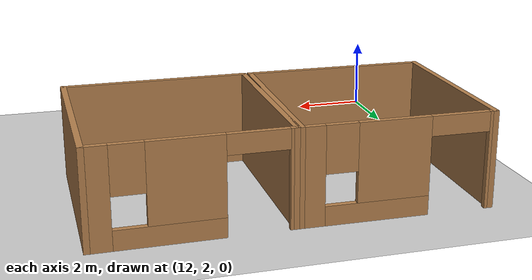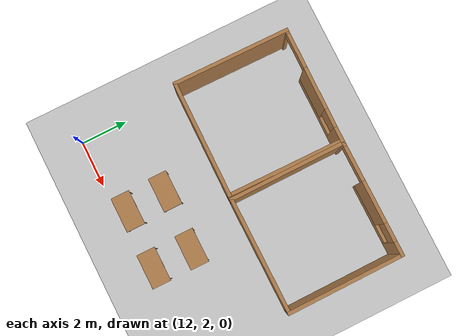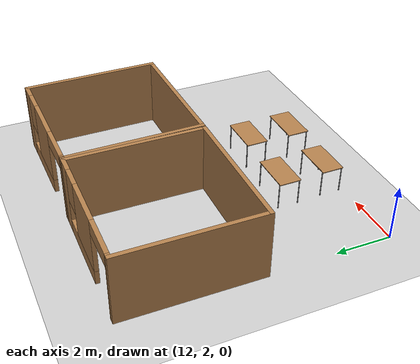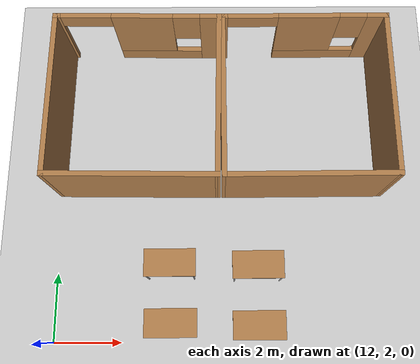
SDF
<sdf version="1.6">
 <world name="default">
  <model name="ground_plane">
   <static>1</static>
   <link name="link">
    <collision name="collision">
     <geometry><plane><normal>0 0 1</normal><size>100 100</size></plane></geometry>
     <surface>
      <contact><collide_bitmask>65535</collide_bitmask></contact>
      <friction><ode><mu>100</mu><mu2>50</mu2></ode></friction>
     </surface>
    </collision>
    <visual name="visual">
     <cast_shadows>0</cast_shadows>
     <geometry><plane><normal>0 0 1</normal><size>100 100</size></plane></geometry>
     <material>
      <script><uri>file://media/materials/scripts/gazebo.material</uri><name>Gazebo/Grey</name></script>
     </material>
    </visual>
   </link>
  </model>
  <model name="studio_2">
   <pose>14.4518 8.89939 0 0 -0 3.13147</pose>
   <link name="Wall_10">
    <collision name="Wall_10_Collision">
     <geometry><box><size>5 0.15 2.5</size></box></geometry>
     <pose>0 0 1.25 0 -0 0</pose>
    </collision>
    <visual name="Wall_10_Visual">
     <pose>0 0 1.25 0 -0 0</pose>
     <geometry><box><size>5 0.15 2.5</size></box></geometry>
     <material>
      <script><uri>file://media/materials/scripts/gazebo.material</uri><name>Gazebo/Wood</name></script>
      <ambient>1 1 1 1</ambient>
     </material>
     <meta><layer>0</layer></meta>
    </visual>
    <pose>0 2.42482 0 0 0 -7.3e-05</pose>
   </link>
   <link name="Wall_13">
    <collision name="Wall_13_Collision">
     <geometry><box><size>5 0.15 2.5</size></box></geometry>
     <pose>0 0 1.25 0 -0 0</pose>
    </collision>
    <visual name="Wall_13_Visual">
     <pose>0 0 1.25 0 -0 0</pose>
     <geometry><box><size>5 0.15 2.5</size></box></geometry>
     <material>
      <script><uri>file://media/materials/scripts/gazebo.material</uri><name>Gazebo/Wood</name></script>
      <ambient>1 1 1 1</ambient>
     </material>
     <meta><layer>0</layer></meta>
    </visual>
    <pose>-2.42502 -3e-06 0 0 0 -1.5708</pose>
   </link>
   <link name="Wall_15">
    <pose>-2e-05 -2.425 0 0 -0 0</pose>
    <visual name="Wall_15_Visual_0">
     <pose>-2.17395 0 1.25 0 -0 0</pose>
     <geometry><box><size>0.652095 0.15 2.5</size></box></geometry>
     <material>
      <script><uri>file://media/materials/scripts/gazebo.material</uri><name>Gazebo/Wood</name></script>
      <ambient>1 1 1 1</ambient>
     </material>
     <meta><layer>0</layer></meta>
    </visual>
    <collision name="Wall_15_Collision_0">
     <geometry><box><size>0.652095 0.15 2.5</size></box></geometry>
     <pose>-2.17395 0 1.25 0 -0 0</pose>
    </collision>
    <visual name="Wall_15_Visual_1">
     <pose>2.38574 0 1.25 0 -0 0</pose>
     <geometry><box><size>0.228515 0.15 2.5</size></box></geometry>
     <material>
      <script><uri>file://media/materials/scripts/gazebo.material</uri><name>Gazebo/Wood</name></script>
      <ambient>1 1 1 1</ambient>
     </material>
     <meta><layer>0</layer></meta>
    </visual>
    <collision name="Wall_15_Collision_1">
     <geometry><box><size>0.228515 0.15 2.5</size></box></geometry>
     <pose>2.38574 0 1.25 0 -0 0</pose>
    </collision>
    <visual name="Wall_15_Visual_2">
     <pose>-0.53821 0 0.25 0 -0 0</pose>
     <geometry><box><size>2.61939 0.15 0.5</size></box></geometry>
     <material>
      <script><uri>file://media/materials/scripts/gazebo.material</uri><name>Gazebo/Wood</name></script>
      <ambient>1 1 1 1</ambient>
     </material>
     <meta><layer>0</layer></meta>
    </visual>
    <collision name="Wall_15_Collision_2">
     <geometry><box><size>2.61939 0.15 0.5</size></box></geometry>
     <pose>-0.53821 0 0.25 0 -0 0</pose>
    </collision>
    <visual name="Wall_15_Visual_3">
     <pose>-0.13821 0 1.5 0 -0 0</pose>
     <geometry><box><size>1.81939 0.15 2</size></box></geometry>
     <material>
      <script><uri>file://media/materials/scripts/gazebo.material</uri><name>Gazebo/Wood</name></script>
      <ambient>1 1 1 1</ambient>
     </material>
     <meta><layer>0</layer></meta>
    </visual>
    <collision name="Wall_15_Collision_3">
     <geometry><box><size>1.81939 0.15 2</size></box></geometry>
     <pose>-0.13821 0 1.5 0 -0 0</pose>
    </collision>
    <visual name="Wall_15_Visual_4">
     <pose>-1.4479 0 1.9 0 -0 0</pose>
     <geometry><box><size>0.8 0.15 1.2</size></box></geometry>
     <material>
      <script><uri>file://media/materials/scripts/gazebo.material</uri><name>Gazebo/Wood</name></script>
      <ambient>1 1 1 1</ambient>
     </material>
     <meta><layer>0</layer></meta>
    </visual>
    <collision name="Wall_15_Collision_4">
     <geometry><box><size>0.8 0.15 1.2</size></box></geometry>
     <pose>-1.4479 0 1.9 0 -0 0</pose>
    </collision>
    <visual name="Wall_15_Visual_5">
     <pose>1.52148 0 2.25 0 -0 0</pose>
     <geometry><box><size>1.5 0.15 0.5</size></box></geometry>
     <material>
      <script><uri>file://media/materials/scripts/gazebo.material</uri><name>Gazebo/Wood</name></script>
      <ambient>1 1 1 1</ambient>
     </material>
     <meta><layer>0</layer></meta>
    </visual>
    <collision name="Wall_15_Collision_5">
     <geometry><box><size>1.5 0.15 0.5</size></box></geometry>
     <pose>1.52148 0 2.25 0 -0 0</pose>
    </collision>
   </link>
   <link name="Wall_16">
    <collision name="Wall_16_Collision">
     <geometry><box><size>4.99965 0.15 2.5</size></box></geometry>
     <pose>0 0 1.25 0 -0 0</pose>
    </collision>
    <visual name="Wall_16_Visual">
     <pose>0 0 1.25 0 -0 0</pose>
     <geometry><box><size>4.99965 0.15 2.5</size></box></geometry>
     <material>
      <script><uri>file://media/materials/scripts/gazebo.material</uri><name>Gazebo/Wood</name></script>
      <ambient>1 1 1 1</ambient>
     </material>
     <meta><layer>0</layer></meta>
    </visual>
    <pose>2.425 -0.00018 0 0 -0 1.57079</pose>
   </link>
   <static>1</static>
  </model>
  <model name="studio_3">
   <pose>19.4488 8.8882 0 0 0 -3.13599</pose>
   <link name="Wall_10">
    <collision name="Wall_10_Collision">
     <geometry><box><size>5 0.15 2.5</size></box></geometry>
     <pose>0 0 1.25 0 -0 0</pose>
    </collision>
    <visual name="Wall_10_Visual">
     <pose>0 0 1.25 0 -0 0</pose>
     <geometry><box><size>5 0.15 2.5</size></box></geometry>
     <material>
      <script><uri>file://media/materials/scripts/gazebo.material</uri><name>Gazebo/Wood</name></script>
      <ambient>1 1 1 1</ambient>
     </material>
     <meta><layer>0</layer></meta>
    </visual>
    <pose>0 2.42482 0 0 0 -7.3e-05</pose>
   </link>
   <link name="Wall_13">
    <collision name="Wall_13_Collision">
     <geometry><box><size>5 0.15 2.5</size></box></geometry>
     <pose>0 0 1.25 0 -0 0</pose>
    </collision>
    <visual name="Wall_13_Visual">
     <pose>0 0 1.25 0 -0 0</pose>
     <geometry><box><size>5 0.15 2.5</size></box></geometry>
     <material>
      <script><uri>file://media/materials/scripts/gazebo.material</uri><name>Gazebo/Wood</name></script>
      <ambient>1 1 1 1</ambient>
     </material>
     <meta><layer>0</layer></meta>
    </visual>
    <pose>-2.42502 -3e-06 0 0 0 -1.5708</pose>
   </link>
   <link name="Wall_15">
    <pose>-2e-05 -2.425 0 0 -0 0</pose>
    <visual name="Wall_15_Visual_0">
     <pose>-2.17395 0 1.25 0 -0 0</pose>
     <geometry><box><size>0.652095 0.15 2.5</size></box></geometry>
     <material>
      <script><uri>file://media/materials/scripts/gazebo.material</uri><name>Gazebo/Wood</name></script>
      <ambient>1 1 1 1</ambient>
     </material>
     <meta><layer>0</layer></meta>
    </visual>
    <collision name="Wall_15_Collision_0">
     <geometry><box><size>0.652095 0.15 2.5</size></box></geometry>
     <pose>-2.17395 0 1.25 0 -0 0</pose>
    </collision>
    <visual name="Wall_15_Visual_1">
     <pose>2.38574 0 1.25 0 -0 0</pose>
     <geometry><box><size>0.228515 0.15 2.5</size></box></geometry>
     <material>
      <script><uri>file://media/materials/scripts/gazebo.material</uri><name>Gazebo/Wood</name></script>
      <ambient>1 1 1 1</ambient>
     </material>
     <meta><layer>0</layer></meta>
    </visual>
    <collision name="Wall_15_Collision_1">
     <geometry><box><size>0.228515 0.15 2.5</size></box></geometry>
     <pose>2.38574 0 1.25 0 -0 0</pose>
    </collision>
    <visual name="Wall_15_Visual_2">
     <pose>-0.53821 0 0.25 0 -0 0</pose>
     <geometry><box><size>2.61939 0.15 0.5</size></box></geometry>
     <material>
      <script><uri>file://media/materials/scripts/gazebo.material</uri><name>Gazebo/Wood</name></script>
      <ambient>1 1 1 1</ambient>
     </material>
     <meta><layer>0</layer></meta>
    </visual>
    <collision name="Wall_15_Collision_2">
     <geometry><box><size>2.61939 0.15 0.5</size></box></geometry>
     <pose>-0.53821 0 0.25 0 -0 0</pose>
    </collision>
    <visual name="Wall_15_Visual_3">
     <pose>-0.13821 0 1.5 0 -0 0</pose>
     <geometry><box><size>1.81939 0.15 2</size></box></geometry>
     <material>
      <script><uri>file://media/materials/scripts/gazebo.material</uri><name>Gazebo/Wood</name></script>
      <ambient>1 1 1 1</ambient>
     </material>
     <meta><layer>0</layer></meta>
    </visual>
    <collision name="Wall_15_Collision_3">
     <geometry><box><size>1.81939 0.15 2</size></box></geometry>
     <pose>-0.13821 0 1.5 0 -0 0</pose>
    </collision>
    <visual name="Wall_15_Visual_4">
     <pose>-1.4479 0 1.9 0 -0 0</pose>
     <geometry><box><size>0.8 0.15 1.2</size></box></geometry>
     <material>
      <script><uri>file://media/materials/scripts/gazebo.material</uri><name>Gazebo/Wood</name></script>
      <ambient>1 1 1 1</ambient>
     </material>
     <meta><layer>0</layer></meta>
    </visual>
    <collision name="Wall_15_Collision_4">
     <geometry><box><size>0.8 0.15 1.2</size></box></geometry>
     <pose>-1.4479 0 1.9 0 -0 0</pose>
    </collision>
    <visual name="Wall_15_Visual_5">
     <pose>1.52148 0 2.25 0 -0 0</pose>
     <geometry><box><size>1.5 0.15 0.5</size></box></geometry>
     <material>
      <script><uri>file://media/materials/scripts/gazebo.material</uri><name>Gazebo/Wood</name></script>
      <ambient>1 1 1 1</ambient>
     </material>
     <meta><layer>0</layer></meta>
    </visual>
    <collision name="Wall_15_Collision_5">
     <geometry><box><size>1.5 0.15 0.5</size></box></geometry>
     <pose>1.52148 0 2.25 0 -0 0</pose>
    </collision>
   </link>
   <link name="Wall_16">
    <collision name="Wall_16_Collision">
     <geometry><box><size>4.99965 0.15 2.5</size></box></geometry>
     <pose>0 0 1.25 0 -0 0</pose>
    </collision>
    <visual name="Wall_16_Visual">
     <pose>0 0 1.25 0 -0 0</pose>
     <geometry><box><size>4.99965 0.15 2.5</size></box></geometry>
     <material>
      <script><uri>file://media/materials/scripts/gazebo.material</uri><name>Gazebo/Wood</name></script>
      <ambient>1 1 1 1</ambient>
     </material>
     <meta><layer>0</layer></meta>
    </visual>
    <pose>2.425 -0.00018 0 0 -0 1.57079</pose>
   </link>
   <static>1</static>
  </model>
  <model name="table_clone_clone_clone">
   <static>1</static>
   <link name="link">
    <collision name="surface">
     <pose>0 0 1 0 -0 0</pose>
     <geometry><box><size>1.5 0.8 0.03</size></box></geometry>
     <surface><friction><ode><mu>0.6</mu><mu2>0.6</mu2></ode></friction></surface>
    </collision>
    <visual name="visual1">
     <pose>0 0 1 0 -0 0</pose>
     <geometry><box><size>1.5 0.8 0.03</size></box></geometry>
     <material>
      <script><uri>file://media/materials/scripts/gazebo.material</uri><name>Gazebo/Wood</name></script>
     </material>
    </visual>
    <collision name="front_left_leg">
     <pose>0.68 0.38 0.5 0 -0 0</pose>
     <geometry><cylinder><radius>0.02</radius><length>1</length></cylinder></geometry>
    </collision>
    <visual name="front_left_leg">
     <pose>0.68 0.38 0.5 0 -0 0</pose>
     <geometry><cylinder><radius>0.02</radius><length>1</length></cylinder></geometry>
     <material>
      <script><uri>file://media/materials/scripts/gazebo.material</uri><name>Gazebo/Grey</name></script>
     </material>
    </visual>
    <collision name="front_right_leg">
     <pose>0.68 -0.38 0.5 0 -0 0</pose>
     <geometry><cylinder><radius>0.02</radius><length>1</length></cylinder></geometry>
    </collision>
    <visual name="front_right_leg">
     <pose>0.68 -0.38 0.5 0 -0 0</pose>
     <geometry><cylinder><radius>0.02</radius><length>1</length></cylinder></geometry>
     <material>
      <script><uri>file://media/materials/scripts/gazebo.material</uri><name>Gazebo/Grey</name></script>
     </material>
    </visual>
    <collision name="back_right_leg">
     <pose>-0.68 -0.38 0.5 0 -0 0</pose>
     <geometry><cylinder><radius>0.02</radius><length>1</length></cylinder></geometry>
    </collision>
    <visual name="back_right_leg">
     <pose>-0.68 -0.38 0.5 0 -0 0</pose>
     <geometry><cylinder><radius>0.02</radius><length>1</length></cylinder></geometry>
     <material>
      <script><uri>file://media/materials/scripts/gazebo.material</uri><name>Gazebo/Grey</name></script>
     </material>
    </visual>
    <collision name="back_left_leg">
     <pose>-0.68 0.38 0.5 0 -0 0</pose>
     <geometry><cylinder><radius>0.02</radius><length>1</length></cylinder></geometry>
    </collision>
    <visual name="back_left_leg">
     <pose>-0.68 0.38 0.5 0 -0 0</pose>
     <geometry><cylinder><radius>0.02</radius><length>1</length></cylinder></geometry>
     <material>
      <script><uri>file://media/materials/scripts/gazebo.material</uri><name>Gazebo/Grey</name></script>
     </material>
    </visual>
   </link>
   <pose>18.0095 2.47853 0 0 -0 0</pose>
  </model>
  <model name="table_clone_clone_clone_clone">
   <static>1</static>
   <link name="link">
    <collision name="surface">
     <pose>0 0 1 0 -0 0</pose>
     <geometry><box><size>1.5 0.8 0.03</size></box></geometry>
     <surface><friction><ode><mu>0.6</mu><mu2>0.6</mu2></ode></friction></surface>
    </collision>
    <visual name="visual1">
     <pose>0 0 1 0 -0 0</pose>
     <geometry><box><size>1.5 0.8 0.03</size></box></geometry>
     <material>
      <script><uri>file://media/materials/scripts/gazebo.material</uri><name>Gazebo/Wood</name></script>
     </material>
    </visual>
    <collision name="front_left_leg">
     <pose>0.68 0.38 0.5 0 -0 0</pose>
     <geometry><cylinder><radius>0.02</radius><length>1</length></cylinder></geometry>
    </collision>
    <visual name="front_left_leg">
     <pose>0.68 0.38 0.5 0 -0 0</pose>
     <geometry><cylinder><radius>0.02</radius><length>1</length></cylinder></geometry>
     <material>
      <script><uri>file://media/materials/scripts/gazebo.material</uri><name>Gazebo/Grey</name></script>
     </material>
    </visual>
    <collision name="front_right_leg">
     <pose>0.68 -0.38 0.5 0 -0 0</pose>
     <geometry><cylinder><radius>0.02</radius><length>1</length></cylinder></geometry>
    </collision>
    <visual name="front_right_leg">
     <pose>0.68 -0.38 0.5 0 -0 0</pose>
     <geometry><cylinder><radius>0.02</radius><length>1</length></cylinder></geometry>
     <material>
      <script><uri>file://media/materials/scripts/gazebo.material</uri><name>Gazebo/Grey</name></script>
     </material>
    </visual>
    <collision name="back_right_leg">
     <pose>-0.68 -0.38 0.5 0 -0 0</pose>
     <geometry><cylinder><radius>0.02</radius><length>1</length></cylinder></geometry>
    </collision>
    <visual name="back_right_leg">
     <pose>-0.68 -0.38 0.5 0 -0 0</pose>
     <geometry><cylinder><radius>0.02</radius><length>1</length></cylinder></geometry>
     <material>
      <script><uri>file://media/materials/scripts/gazebo.material</uri><name>Gazebo/Grey</name></script>
     </material>
    </visual>
    <collision name="back_left_leg">
     <pose>-0.68 0.38 0.5 0 -0 0</pose>
     <geometry><cylinder><radius>0.02</radius><length>1</length></cylinder></geometry>
    </collision>
    <visual name="back_left_leg">
     <pose>-0.68 0.38 0.5 0 -0 0</pose>
     <geometry><cylinder><radius>0.02</radius><length>1</length></cylinder></geometry>
     <material>
      <script><uri>file://media/materials/scripts/gazebo.material</uri><name>Gazebo/Grey</name></script>
     </material>
    </visual>
   </link>
   <pose>18.0095 4.16806 0 0 -0 0</pose>
  </model>
  <model name="table_7">
   <static>1</static>
   <link name="link">
    <collision name="surface">
     <pose>0 0 1 0 -0 0</pose>
     <geometry><box><size>1.5 0.8 0.03</size></box></geometry>
     <surface><friction><ode><mu>0.6</mu><mu2>0.6</mu2></ode></friction></surface>
    </collision>
    <visual name="visual1">
     <pose>0 0 1 0 -0 0</pose>
     <geometry><box><size>1.5 0.8 0.03</size></box></geometry>
     <material>
      <script><uri>file://media/materials/scripts/gazebo.material</uri><name>Gazebo/Wood</name></script>
     </material>
    </visual>
    <collision name="front_left_leg">
     <pose>0.68 0.38 0.5 0 -0 0</pose>
     <geometry><cylinder><radius>0.02</radius><length>1</length></cylinder></geometry>
    </collision>
    <visual name="front_left_leg">
     <pose>0.68 0.38 0.5 0 -0 0</pose>
     <geometry><cylinder><radius>0.02</radius><length>1</length></cylinder></geometry>
     <material>
      <script><uri>file://media/materials/scripts/gazebo.material</uri><name>Gazebo/Grey</name></script>
     </material>
    </visual>
    <collision name="front_right_leg">
     <pose>0.68 -0.38 0.5 0 -0 0</pose>
     <geometry><cylinder><radius>0.02</radius><length>1</length></cylinder></geometry>
    </collision>
    <visual name="front_right_leg">
     <pose>0.68 -0.38 0.5 0 -0 0</pose>
     <geometry><cylinder><radius>0.02</radius><length>1</length></cylinder></geometry>
     <material>
      <script><uri>file://media/materials/scripts/gazebo.material</uri><name>Gazebo/Grey</name></script>
     </material>
    </visual>
    <collision name="back_right_leg">
     <pose>-0.68 -0.38 0.5 0 -0 0</pose>
     <geometry><cylinder><radius>0.02</radius><length>1</length></cylinder></geometry>
    </collision>
    <visual name="back_right_leg">
     <pose>-0.68 -0.38 0.5 0 -0 0</pose>
     <geometry><cylinder><radius>0.02</radius><length>1</length></cylinder></geometry>
     <material>
      <script><uri>file://media/materials/scripts/gazebo.material</uri><name>Gazebo/Grey</name></script>
     </material>
    </visual>
    <collision name="back_left_leg">
     <pose>-0.68 0.38 0.5 0 -0 0</pose>
     <geometry><cylinder><radius>0.02</radius><length>1</length></cylinder></geometry>
    </collision>
    <visual name="back_left_leg">
     <pose>-0.68 0.38 0.5 0 -0 0</pose>
     <geometry><cylinder><radius>0.02</radius><length>1</length></cylinder></geometry>
     <material>
      <script><uri>file://media/materials/scripts/gazebo.material</uri><name>Gazebo/Grey</name></script>
     </material>
    </visual>
   </link>
   <pose>15.5079 2.54393 0 0 -0 0</pose>
  </model>
  <model name="table_8">
   <static>1</static>
   <link name="link">
    <collision name="surface">
     <pose>0 0 1 0 -0 0</pose>
     <geometry><box><size>1.5 0.8 0.03</size></box></geometry>
     <surface><friction><ode><mu>0.6</mu><mu2>0.6</mu2></ode></friction></surface>
    </collision>
    <visual name="visual1">
     <pose>0 0 1 0 -0 0</pose>
     <geometry><box><size>1.5 0.8 0.03</size></box></geometry>
     <material>
      <script><uri>file://media/materials/scripts/gazebo.material</uri><name>Gazebo/Wood</name></script>
     </material>
    </visual>
    <collision name="front_left_leg">
     <pose>0.68 0.38 0.5 0 -0 0</pose>
     <geometry><cylinder><radius>0.02</radius><length>1</length></cylinder></geometry>
    </collision>
    <visual name="front_left_leg">
     <pose>0.68 0.38 0.5 0 -0 0</pose>
     <geometry><cylinder><radius>0.02</radius><length>1</length></cylinder></geometry>
     <material>
      <script><uri>file://media/materials/scripts/gazebo.material</uri><name>Gazebo/Grey</name></script>
     </material>
    </visual>
    <collision name="front_right_leg">
     <pose>0.68 -0.38 0.5 0 -0 0</pose>
     <geometry><cylinder><radius>0.02</radius><length>1</length></cylinder></geometry>
    </collision>
    <visual name="front_right_leg">
     <pose>0.68 -0.38 0.5 0 -0 0</pose>
     <geometry><cylinder><radius>0.02</radius><length>1</length></cylinder></geometry>
     <material>
      <script><uri>file://media/materials/scripts/gazebo.material</uri><name>Gazebo/Grey</name></script>
     </material>
    </visual>
    <collision name="back_right_leg">
     <pose>-0.68 -0.38 0.5 0 -0 0</pose>
     <geometry><cylinder><radius>0.02</radius><length>1</length></cylinder></geometry>
    </collision>
    <visual name="back_right_leg">
     <pose>-0.68 -0.38 0.5 0 -0 0</pose>
     <geometry><cylinder><radius>0.02</radius><length>1</length></cylinder></geometry>
     <material>
      <script><uri>file://media/materials/scripts/gazebo.material</uri><name>Gazebo/Grey</name></script>
     </material>
    </visual>
    <collision name="back_left_leg">
     <pose>-0.68 0.38 0.5 0 -0 0</pose>
     <geometry><cylinder><radius>0.02</radius><length>1</length></cylinder></geometry>
    </collision>
    <visual name="back_left_leg">
     <pose>-0.68 0.38 0.5 0 -0 0</pose>
     <geometry><cylinder><radius>0.02</radius><length>1</length></cylinder></geometry>
     <material>
      <script><uri>file://media/materials/scripts/gazebo.material</uri><name>Gazebo/Grey</name></script>
     </material>
    </visual>
   </link>
   <pose>15.4522 4.23346 0 0 -0 0</pose>
  </model>
 </world>
</sdf>
